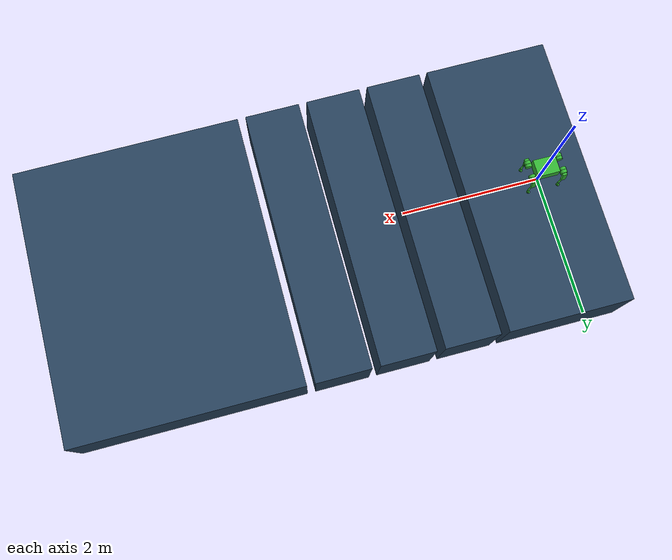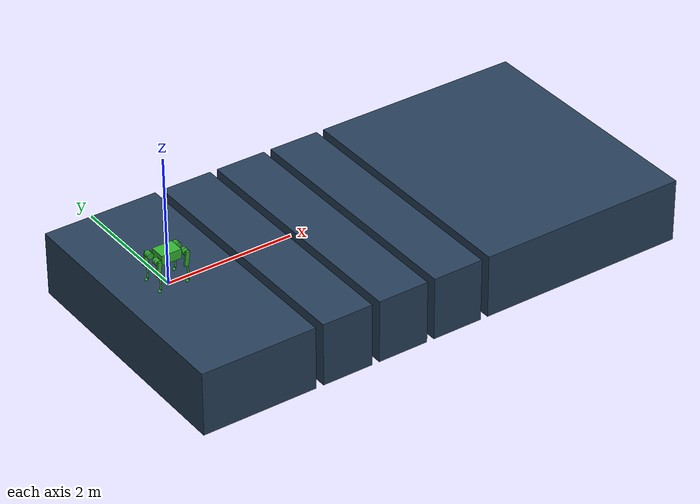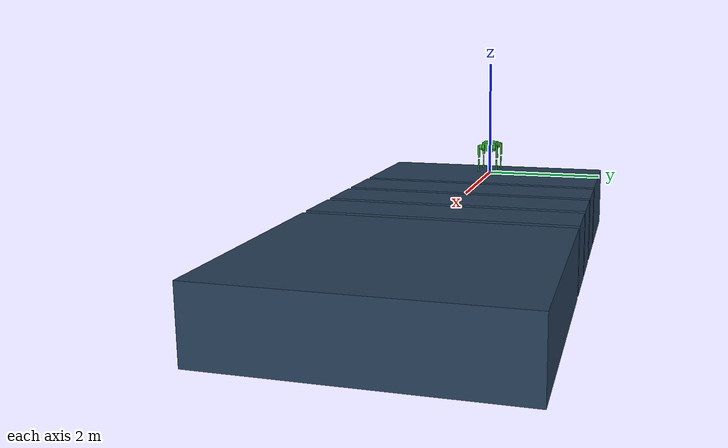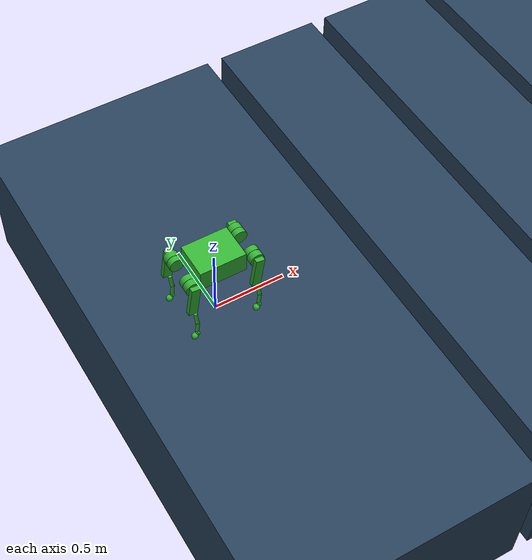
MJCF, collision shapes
<mujoco model="imgo2 cmoe gap scene">
  <include file="imgo2.xml"/>

  <!-- CMoETrackGapTerrainCfg medium difficulty: four 0.12 m gaps separated
       by 0.80 m platforms. Shift training spawn_x=0.75 m to robot x=0. -->
  <statistic center="2 0 0.5" extent="5"/>
  <visual>
    <headlight diffuse="0.6 0.6 0.6" ambient="0.3 0.3 0.3" specular="0 0 0"/>
    <rgba haze="0.15 0.25 0.35 1"/>
    <global azimuth="-130" elevation="-20"/>
  </visual>
  <asset>
    <texture type="skybox" builtin="gradient" rgb1="0.3 0.5 0.7" rgb2="0 0 0" width="512" height="3072"/>
    <texture type="2d" name="groundplane" builtin="checker" mark="edge" rgb1="0.2 0.3 0.4" rgb2="0.1 0.2 0.3"
      markrgb="0.8 0.8 0.8" width="300" height="300"/>
    <material name="groundplane" texture="groundplane" texuniform="true" texrepeat="5 5" reflectance="0.2"/>
  </asset>
  <worldbody>
    <light pos="0 0 3" dir="0 0 -1" directional="true"/>
    <!-- top z=0, width=4 m, 1 m deep; group 5 is the terrain ray mask -->
    <geom name="platform_0" type="box" pos="0.15 0 -0.5" size="0.90 2.0 0.5" group="5" material="groundplane" friction="1 0.005 0.0001" contype="1" conaffinity="2"/>
    <geom name="platform_1" type="box" pos="1.57 0 -0.5" size="0.40 2.0 0.5" group="5" material="groundplane" friction="1 0.005 0.0001" contype="1" conaffinity="2"/>
    <geom name="platform_2" type="box" pos="2.49 0 -0.5" size="0.40 2.0 0.5" group="5" material="groundplane" friction="1 0.005 0.0001" contype="1" conaffinity="2"/>
    <geom name="platform_3" type="box" pos="3.41 0 -0.5" size="0.40 2.0 0.5" group="5" material="groundplane" friction="1 0.005 0.0001" contype="1" conaffinity="2"/>
    <geom name="platform_4" type="box" pos="5.59 0 -0.5" size="1.66 2.0 0.5" group="5" material="groundplane" friction="1 0.005 0.0001" contype="1" conaffinity="2"/>
  </worldbody>
</mujoco>

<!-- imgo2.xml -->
<mujoco model="imgo2">
  <compiler angle="radian" eulerseq="xyz" autolimits="true" inertiafromgeom="false" />
  <option timestep="0.005" cone="elliptic" impratio="100" gravity="0 0 -9.81" />
  <asset>
      <mesh name="mesh_0" file="../meshes/base.STL" scale="1 1 1" />
      <mesh name="mesh_1" file="../meshes/FL_hip.STL" scale="1 1 1" />
      <mesh name="mesh_2" file="../meshes/L_thigh.STL" scale="1 1 1" />
      <mesh name="mesh_3" file="../meshes/L_shank.STL" scale="1 1 1" />
      <mesh name="mesh_4" file="../meshes/foot.STL" scale="1 1 1" />
      <mesh name="mesh_5" file="../meshes/FR_hip.STL" scale="1 1 1" />
      <mesh name="mesh_6" file="../meshes/R_thigh.STL" scale="1 1 1" />
      <mesh name="mesh_7" file="../meshes/R_shank.STL" scale="1 1 1" />
      <mesh name="mesh_8" file="../meshes/RL_hip.STL" scale="1 1 1" />
      <mesh name="mesh_9" file="../meshes/RR_hip.STL" scale="1 1 1" />
    </asset>
  <worldbody>
    <body name="base" pos="0 0 0.5">
          <freejoint name="root" />
          <site name="imu" size="0.005" />
          <!-- Engineering tow point; matches towing_env_cfg.ROBOT_ATTACHMENT_OFFSET_M. -->
          <site name="tow_robot" pos="-0.16 0 0" size="0.006" rgba="1 0.7 0 1" />
          <inertial pos="-0.00002223 -0.00136579 0.00287896" mass="5.53394020" fullinertia="0.03866860 0.10411461 0.12554111 0.00001502 0.00000229 -0.00009602" />
          <geom pos="0 0 0.0" euler="0 0 0" type="mesh" mesh="mesh_0" contype="0" conaffinity="0" group="2" rgba="0.55 0.6 0.65 1" />
          <geom pos="0 0 0" euler="0 0 0" type="box" size="0.1575 0.1215 0.0735" contype="2" conaffinity="1" condim="3" solref="0.005 1" friction="1 0.01 0.01" group="3" rgba="0.2 0.7 0.2 0.3" />
          <geom pos="0.136 0.07 -0.08325" euler="0 0 0" type="box" size="0.009 0.006 0.009" contype="2" conaffinity="1" condim="3" solref="0.005 1" friction="1 0.01 0.01" group="3" rgba="0.2 0.7 0.2 0.3" />
          <geom pos="0.136 -0.07 -0.08325" euler="0 0 0" type="box" size="0.009 0.006 0.009" contype="2" conaffinity="1" condim="3" solref="0.005 1" friction="1 0.01 0.01" group="3" rgba="0.2 0.7 0.2 0.3" />
          <geom pos="-0.136 0.07 -0.08325" euler="0 0 0" type="box" size="0.009 0.006 0.009" contype="2" conaffinity="1" condim="3" solref="0.005 1" friction="1 0.01 0.01" group="3" rgba="0.2 0.7 0.2 0.3" />
          <geom pos="-0.136 -0.07 -0.08325" euler="0 0 0" type="box" size="0.009 0.006 0.009" contype="2" conaffinity="1" condim="3" solref="0.005 1" friction="1 0.01 0.01" group="3" rgba="0.2 0.7 0.2 0.3" />
          <body name="FL_HIP" pos="0.1575 0.067 0.00025" euler="0 0 0">
            <joint name="FL_hip_joint" type="hinge" axis="1 0 0" range="-0.523 0.523" damping="1" armature="0.1" />
            <inertial pos="0.05776150 0.01631658 0.00001927" mass="0.66982842" fullinertia="0.00047165 0.00094023 0.00063679 -0.00002152 -0.00000604 0.00000025" />
            <geom type="mesh" mesh="mesh_1" contype="0" conaffinity="0" group="2" rgba="0.55 0.6 0.65 1" />
            <geom pos="0.063 0.013 0.0" euler="1.5707963267948966 0.0 0.0" type="cylinder" size="0.048 0.0205" contype="2" conaffinity="1" condim="3" solref="0.005 1" friction="1 0.01 0.01" group="3" rgba="0.2 0.7 0.2 0.3" />
            <body name="FL_THIGH" pos="0.063 0.0346 0" euler="0 0 0">
              <joint name="FL_thigh_joint" type="hinge" axis="0 1 0" range="-0.9 2.87" damping="1" armature="0.1" />
              <inertial pos="-0.00429543 0.04392351 -0.03236426" mass="0.96995719" fullinertia="0.00506421 0.00527087 0.00088197 0.00008162 -0.00034748 0.00062882" />
              <geom type="mesh" mesh="mesh_2" contype="0" conaffinity="0" group="2" rgba="0.55 0.6 0.65 1" />
              <geom pos="0.0 0.0235 0.0" euler="1.5707963267948966 0.0 0.0" type="cylinder" size="0.048 0.023" contype="2" conaffinity="1" condim="3" solref="0.005 1" friction="1 0.01 0.01" group="3" rgba="0.2 0.7 0.2 0.3" />
              <geom pos="-0.012 0.0637 -0.08" euler="0.0 0.137 0.0" type="box" size="0.03 0.016 0.11" contype="2" conaffinity="1" condim="3" solref="0.005 1" friction="1 0.01 0.01" group="3" rgba="0.2 0.7 0.2 0.3" />
              <body name="FL_SHANK" pos="0 0.0557 -0.22" euler="0 0 0">
                <joint name="FL_shank_joint" type="hinge" axis="0 1 0" range="-3.0 -0.733" damping="1" armature="0.1" />
                <inertial pos="0.00291507 0.00773582 -0.08768836" mass="0.09561741" fullinertia="0.00054414 0.00055144 0.00001064 0.00000025 0.00000058 0.00000263" />
                <geom type="mesh" mesh="mesh_3" contype="0" conaffinity="0" group="2" rgba="0.55 0.6 0.65 1" />
                <geom pos="0.0 0.008 -0.05" euler="0.0 -0.1 0.0" type="cylinder" size="0.012 0.05" contype="2" conaffinity="1" condim="3" solref="0.005 1" friction="1 0.01 0.01" group="3" rgba="0.2 0.7 0.2 0.3" />
                <geom pos="0.005 0.008 -0.14" euler="0.0 0.1 0.0" type="cylinder" size="0.012 0.04" contype="2" conaffinity="1" condim="3" solref="0.005 1" friction="1 0.01 0.01" group="3" rgba="0.2 0.7 0.2 0.3" />
                <body name="FL_FOOT" pos="0.0 0.00455 -0.206" euler="0.0 0.777 0.0">
                  <inertial pos="-0.00797137 0.00353495 -0.02130484" mass="0.056" fullinertia="9.6e-06 9.6e-06 9.6e-06 0 0 0" />
                  <geom type="mesh" mesh="mesh_4" contype="0" conaffinity="0" group="2" rgba="0.55 0.6 0.65 1" />
                  <geom pos="-0.008 0.0035 0.01" euler="0.0 0.0 0.0" type="cylinder" size="0.0155 0.005" contype="2" conaffinity="1" condim="3" solref="0.005 1" friction="0.4 0.02 0.01" group="3" rgba="0.2 0.7 0.2 0.3" />
                  <geom pos="-0.008 0.0035 -0.02" euler="0.0 0.0 0.0" type="sphere" size="0.022" contype="2" conaffinity="1" condim="3" solref="0.005 1" friction="0.4 0.02 0.01" group="3" rgba="0.2 0.7 0.2 0.3" />
                </body>
              </body>
            </body>
          </body>
          <body name="FR_HIP" pos="0.1575 -0.067 0.00025" euler="0 0 0">
            <joint name="FR_hip_joint" type="hinge" axis="1 0 0" range="-0.523 0.523" damping="1" armature="0.1" />
            <inertial pos="0.05776150 -0.01631658 0.00001927" mass="0.66982842" fullinertia="0.00047165 0.00094023 0.00063679 0.00002152 -0.00000604 -0.00000025" />
            <geom type="mesh" mesh="mesh_5" contype="0" conaffinity="0" group="2" rgba="0.55 0.6 0.65 1" />
            <geom pos="0.063 -0.013 0.0" euler="1.5707963267948966 0.0 0.0" type="cylinder" size="0.048 0.0205" contype="2" conaffinity="1" condim="3" solref="0.005 1" friction="1 0.01 0.01" group="3" rgba="0.2 0.7 0.2 0.3" />
            <body name="FR_THIGH" pos="0.063 -0.0346 0" euler="0 0 0">
              <joint name="FR_thigh_joint" type="hinge" axis="0 1 0" range="-0.9 2.87" damping="1" armature="0.1" />
              <inertial pos="-0.00429543 -0.04392351 -0.03236426" mass="0.96995719" fullinertia="0.00506421 0.00527087 0.00088197 -0.00008162 -0.00034748 -0.00062882" />
              <geom type="mesh" mesh="mesh_6" contype="0" conaffinity="0" group="2" rgba="0.55 0.6 0.65 1" />
              <geom pos="0.0 -0.0235 0.0" euler="1.5707963267948966 0.0 0.0" type="cylinder" size="0.048 0.023" contype="2" conaffinity="1" condim="3" solref="0.005 1" friction="1 0.01 0.01" group="3" rgba="0.2 0.7 0.2 0.3" />
              <geom pos="-0.012 -0.0637 -0.08" euler="0.0 0.137 0.0" type="box" size="0.03 0.016 0.11" contype="2" conaffinity="1" condim="3" solref="0.005 1" friction="1 0.01 0.01" group="3" rgba="0.2 0.7 0.2 0.3" />
              <body name="FR_SHANK" pos="0 -0.0557 -0.22" euler="0 0 0">
                <joint name="FR_shank_joint" type="hinge" axis="0 1 0" range="-3.0 -0.733" damping="1" armature="0.1" />
                <inertial pos="0.00291507 -0.00773582 -0.08768836" mass="0.09561741" fullinertia="0.00054414 0.00055144 0.00001064 -0.00000025 0.00000058 -0.00000263" />
                <geom type="mesh" mesh="mesh_7" contype="0" conaffinity="0" group="2" rgba="0.55 0.6 0.65 1" />
                <geom pos="0.0 -0.008 -0.05" euler="0.0 -0.1 0.0" type="cylinder" size="0.012 0.05" contype="2" conaffinity="1" condim="3" solref="0.005 1" friction="1 0.01 0.01" group="3" rgba="0.2 0.7 0.2 0.3" />
                <geom pos="0.005 -0.008 -0.14" euler="0.0 0.1 0.0" type="cylinder" size="0.012 0.04" contype="2" conaffinity="1" condim="3" solref="0.005 1" friction="1 0.01 0.01" group="3" rgba="0.2 0.7 0.2 0.3" />
                <body name="FR_FOOT" pos="0.0 -0.01145 -0.206" euler="0.0 0.777 0.0">
                  <inertial pos="-0.00797137 0.00353495 -0.02130484" mass="0.056" fullinertia="9.6e-06 9.6e-06 9.6e-06 0 0 0" />
                  <geom type="mesh" mesh="mesh_4" contype="0" conaffinity="0" group="2" rgba="0.55 0.6 0.65 1" />
                  <geom pos="-0.008 -0.0035 0.01" euler="0.0 0.0 0.0" type="cylinder" size="0.0155 0.005" contype="2" conaffinity="1" condim="3" solref="0.005 1" friction="0.4 0.02 0.01" group="3" rgba="0.2 0.7 0.2 0.3" />
                  <geom pos="-0.008 -0.0035 -0.02" euler="0.0 0.0 0.0" type="sphere" size="0.022" contype="2" conaffinity="1" condim="3" solref="0.005 1" friction="0.4 0.02 0.01" group="3" rgba="0.2 0.7 0.2 0.3" />
                </body>
              </body>
            </body>
          </body>
          <body name="RL_HIP" pos="-0.1575 0.067 0.00025" euler="0 0 0">
            <joint name="RL_hip_joint" type="hinge" axis="1 0 0" range="-0.523 0.523" damping="1" armature="0.1" />
            <inertial pos="-0.05776150 0.01631658 0.00001927" mass="0.66982842" fullinertia="0.00047165 0.00094023 0.00063679 0.00002152 0.00000604 0.00000025" />
            <geom type="mesh" mesh="mesh_8" contype="0" conaffinity="0" group="2" rgba="0.55 0.6 0.65 1" />
            <geom pos="-0.063 0.013 0.0" euler="1.5707963267948966 0.0 0.0" type="cylinder" size="0.048 0.0205" contype="2" conaffinity="1" condim="3" solref="0.005 1" friction="1 0.01 0.01" group="3" rgba="0.2 0.7 0.2 0.3" />
            <body name="RL_THIGH" pos="-0.063 0.0346 0" euler="0 0 0">
              <joint name="RL_thigh_joint" type="hinge" axis="0 1 0" range="-0.9 2.87" damping="1" armature="0.1" />
              <inertial pos="0.00429543 0.04392351 -0.03236426" mass="0.96995719" fullinertia="0.00506421 0.00527087 0.00088197 0.00008162 -0.00034748 0.00062882" />
              <geom type="mesh" mesh="mesh_2" contype="0" conaffinity="0" group="2" rgba="0.55 0.6 0.65 1" />
              <geom pos="0.0 0.0235 0.0" euler="1.5707963267948966 0.0 0.0" type="cylinder" size="0.048 0.023" contype="2" conaffinity="1" condim="3" solref="0.005 1" friction="1 0.01 0.01" group="3" rgba="0.2 0.7 0.2 0.3" />
              <geom pos="-0.012 0.0637 -0.08" euler="0.0 0.137 0.0" type="box" size="0.03 0.016 0.11" contype="2" conaffinity="1" condim="3" solref="0.005 1" friction="1 0.01 0.01" group="3" rgba="0.2 0.7 0.2 0.3" />
              <body name="RL_SHANK" pos="0 0.0557 -0.22" euler="0 0 0">
                <joint name="RL_shank_joint" type="hinge" axis="0 1 0" range="-3.0 -0.733" damping="1" armature="0.1" />
                <inertial pos="0.00291507 0.00773582 -0.08768836" mass="0.09561741" fullinertia="0.00054414 0.00055144 0.00001064 0.00000025 0.00000058 0.00000263" />
                <geom type="mesh" mesh="mesh_3" contype="0" conaffinity="0" group="2" rgba="0.55 0.6 0.65 1" />
                <geom pos="0.0 0.008 -0.05" euler="0.0 -0.1 0.0" type="cylinder" size="0.012 0.05" contype="2" conaffinity="1" condim="3" solref="0.005 1" friction="1 0.01 0.01" group="3" rgba="0.2 0.7 0.2 0.3" />
                <geom pos="0.005 0.008 -0.14" euler="0.0 0.1 0.0" type="cylinder" size="0.012 0.04" contype="2" conaffinity="1" condim="3" solref="0.005 1" friction="1 0.01 0.01" group="3" rgba="0.2 0.7 0.2 0.3" />
                <body name="RL_FOOT" pos="0.0 0.00455 -0.206" euler="0.0 0.777 0.0">
                  <inertial pos="-0.00797137 0.00353495 -0.02130484" mass="0.056" fullinertia="9.6e-06 9.6e-06 9.6e-06 0 0 0" />
                  <geom type="mesh" mesh="mesh_4" contype="0" conaffinity="0" group="2" rgba="0.55 0.6 0.65 1" />
                  <geom pos="-0.008 0.0035 0.01" euler="0.0 0.0 0.0" type="cylinder" size="0.0155 0.005" contype="2" conaffinity="1" condim="3" solref="0.005 1" friction="0.4 0.02 0.01" group="3" rgba="0.2 0.7 0.2 0.3" />
                  <geom pos="-0.008 0.0035 -0.02" euler="0.0 0.0 0.0" type="sphere" size="0.022" contype="2" conaffinity="1" condim="3" solref="0.005 1" friction="0.4 0.02 0.01" group="3" rgba="0.2 0.7 0.2 0.3" />
                </body>
              </body>
            </body>
          </body>
          <body name="RR_HIP" pos="-0.1575 -0.067 0.00025" euler="0 0 0">
            <joint name="RR_hip_joint" type="hinge" axis="1 0 0" range="-0.523 0.523" damping="1" armature="0.1" />
            <inertial pos="-0.05776150 -0.01631658 0.00001927" mass="0.66982842" fullinertia="0.00047165 0.00094023 0.00063679 -0.00002152 0.00000604 -0.00000025" />
            <geom type="mesh" mesh="mesh_9" contype="0" conaffinity="0" group="2" rgba="0.55 0.6 0.65 1" />
            <geom pos="-0.063 -0.013 0.0" euler="1.5707963267948966 0.0 0.0" type="cylinder" size="0.048 0.0205" contype="2" conaffinity="1" condim="3" solref="0.005 1" friction="1 0.01 0.01" group="3" rgba="0.2 0.7 0.2 0.3" />
            <body name="RR_THIGH" pos="-0.063 -0.0346 0" euler="0 0 0">
              <joint name="RR_thigh_joint" type="hinge" axis="0 1 0" range="-0.9 2.87" damping="1" armature="0.1" />
              <inertial pos="0.00429543 -0.04392351 -0.03236426" mass="0.96995719" fullinertia="0.00506421 0.00527087 0.00088197 -0.00008162 -0.00034748 -0.00062882" />
              <geom type="mesh" mesh="mesh_6" contype="0" conaffinity="0" group="2" rgba="0.55 0.6 0.65 1" />
              <geom pos="0.0 -0.0235 0.0" euler="1.5707963267948966 0.0 0.0" type="cylinder" size="0.048 0.023" contype="2" conaffinity="1" condim="3" solref="0.005 1" friction="1 0.01 0.01" group="3" rgba="0.2 0.7 0.2 0.3" />
              <geom pos="-0.012 -0.0637 -0.08" euler="0.0 0.137 0.0" type="box" size="0.03 0.016 0.11" contype="2" conaffinity="1" condim="3" solref="0.005 1" friction="1 0.01 0.01" group="3" rgba="0.2 0.7 0.2 0.3" />
              <body name="RR_SHANK" pos="0 -0.0557 -0.22" euler="0 0 0">
                <joint name="RR_shank_joint" type="hinge" axis="0 1 0" range="-3.0 -0.733" damping="1" armature="0.1" />
                <inertial pos="0.00291507 -0.00773582 -0.08768836" mass="0.09561741" fullinertia="0.00054414 0.00055144 0.00001064 -0.00000025 0.00000058 -0.00000263" />
                <geom type="mesh" mesh="mesh_7" contype="0" conaffinity="0" group="2" rgba="0.55 0.6 0.65 1" />
                <geom pos="0.0 -0.008 -0.05" euler="0.0 -0.1 0.0" type="cylinder" size="0.012 0.05" contype="2" conaffinity="1" condim="3" solref="0.005 1" friction="1 0.01 0.01" group="3" rgba="0.2 0.7 0.2 0.3" />
                <geom pos="0.005 -0.008 -0.14" euler="0.0 0.1 0.0" type="cylinder" size="0.012 0.04" contype="2" conaffinity="1" condim="3" solref="0.005 1" friction="1 0.01 0.01" group="3" rgba="0.2 0.7 0.2 0.3" />
                <body name="RR_FOOT" pos="0.0 -0.01145 -0.206" euler="0.0 0.777 0.0">
                  <inertial pos="-0.00797137 0.00353495 -0.02130484" mass="0.056" fullinertia="9.6e-06 9.6e-06 9.6e-06 0 0 0" />
                  <geom type="mesh" mesh="mesh_4" contype="0" conaffinity="0" group="2" rgba="0.55 0.6 0.65 1" />
                  <geom pos="-0.008 -0.0035 0.01" euler="0.0 0.0 0.0" type="cylinder" size="0.0155 0.005" contype="2" conaffinity="1" condim="3" solref="0.005 1" friction="0.4 0.02 0.01" group="3" rgba="0.2 0.7 0.2 0.3" />
                  <geom pos="-0.008 -0.0035 -0.02" euler="0.0 0.0 0.0" type="sphere" size="0.022" contype="2" conaffinity="1" condim="3" solref="0.005 1" friction="0.4 0.02 0.01" group="3" rgba="0.2 0.7 0.2 0.3" />
                </body>
              </body>
            </body>
          </body>
        </body>
  </worldbody>
  <actuator>
      <motor name="FL_hip_joint_motor" joint="FL_hip_joint" ctrlrange="-23.7 23.7" gear="1" />
      <motor name="FL_thigh_joint_motor" joint="FL_thigh_joint" ctrlrange="-23.7 23.7" gear="1" />
      <motor name="FL_shank_joint_motor" joint="FL_shank_joint" ctrlrange="-23.7 23.7" gear="1" />
      <motor name="FR_hip_joint_motor" joint="FR_hip_joint" ctrlrange="-23.7 23.7" gear="1" />
      <motor name="FR_thigh_joint_motor" joint="FR_thigh_joint" ctrlrange="-23.7 23.7" gear="1" />
      <motor name="FR_shank_joint_motor" joint="FR_shank_joint" ctrlrange="-23.7 23.7" gear="1" />
      <motor name="RL_hip_joint_motor" joint="RL_hip_joint" ctrlrange="-23.7 23.7" gear="1" />
      <motor name="RL_thigh_joint_motor" joint="RL_thigh_joint" ctrlrange="-23.7 23.7" gear="1" />
      <motor name="RL_shank_joint_motor" joint="RL_shank_joint" ctrlrange="-23.7 23.7" gear="1" />
      <motor name="RR_hip_joint_motor" joint="RR_hip_joint" ctrlrange="-23.7 23.7" gear="1" />
      <motor name="RR_thigh_joint_motor" joint="RR_thigh_joint" ctrlrange="-23.7 23.7" gear="1" />
      <motor name="RR_shank_joint_motor" joint="RR_shank_joint" ctrlrange="-23.7 23.7" gear="1" />
    </actuator>
  <sensor>
      <jointpos name="FL_hip_joint_jointpos" joint="FL_hip_joint" />
      <jointpos name="FL_thigh_joint_jointpos" joint="FL_thigh_joint" />
      <jointpos name="FL_shank_joint_jointpos" joint="FL_shank_joint" />
      <jointpos name="FR_hip_joint_jointpos" joint="FR_hip_joint" />
      <jointpos name="FR_thigh_joint_jointpos" joint="FR_thigh_joint" />
      <jointpos name="FR_shank_joint_jointpos" joint="FR_shank_joint" />
      <jointpos name="RL_hip_joint_jointpos" joint="RL_hip_joint" />
      <jointpos name="RL_thigh_joint_jointpos" joint="RL_thigh_joint" />
      <jointpos name="RL_shank_joint_jointpos" joint="RL_shank_joint" />
      <jointpos name="RR_hip_joint_jointpos" joint="RR_hip_joint" />
      <jointpos name="RR_thigh_joint_jointpos" joint="RR_thigh_joint" />
      <jointpos name="RR_shank_joint_jointpos" joint="RR_shank_joint" />
      <jointvel name="FL_hip_joint_jointvel" joint="FL_hip_joint" />
      <jointvel name="FL_thigh_joint_jointvel" joint="FL_thigh_joint" />
      <jointvel name="FL_shank_joint_jointvel" joint="FL_shank_joint" />
      <jointvel name="FR_hip_joint_jointvel" joint="FR_hip_joint" />
      <jointvel name="FR_thigh_joint_jointvel" joint="FR_thigh_joint" />
      <jointvel name="FR_shank_joint_jointvel" joint="FR_shank_joint" />
      <jointvel name="RL_hip_joint_jointvel" joint="RL_hip_joint" />
      <jointvel name="RL_thigh_joint_jointvel" joint="RL_thigh_joint" />
      <jointvel name="RL_shank_joint_jointvel" joint="RL_shank_joint" />
      <jointvel name="RR_hip_joint_jointvel" joint="RR_hip_joint" />
      <jointvel name="RR_thigh_joint_jointvel" joint="RR_thigh_joint" />
      <jointvel name="RR_shank_joint_jointvel" joint="RR_shank_joint" />
      <jointactuatorfrc name="FL_hip_joint_jointactuatorfrc" joint="FL_hip_joint" />
      <jointactuatorfrc name="FL_thigh_joint_jointactuatorfrc" joint="FL_thigh_joint" />
      <jointactuatorfrc name="FL_shank_joint_jointactuatorfrc" joint="FL_shank_joint" />
      <jointactuatorfrc name="FR_hip_joint_jointactuatorfrc" joint="FR_hip_joint" />
      <jointactuatorfrc name="FR_thigh_joint_jointactuatorfrc" joint="FR_thigh_joint" />
      <jointactuatorfrc name="FR_shank_joint_jointactuatorfrc" joint="FR_shank_joint" />
      <jointactuatorfrc name="RL_hip_joint_jointactuatorfrc" joint="RL_hip_joint" />
      <jointactuatorfrc name="RL_thigh_joint_jointactuatorfrc" joint="RL_thigh_joint" />
      <jointactuatorfrc name="RL_shank_joint_jointactuatorfrc" joint="RL_shank_joint" />
      <jointactuatorfrc name="RR_hip_joint_jointactuatorfrc" joint="RR_hip_joint" />
      <jointactuatorfrc name="RR_thigh_joint_jointactuatorfrc" joint="RR_thigh_joint" />
      <jointactuatorfrc name="RR_shank_joint_jointactuatorfrc" joint="RR_shank_joint" />
      <!-- 必须挂在 site 上，不能挂 body：body 的 framequat/framelinvel 会再乘上该 body
           的惯量主轴旋转（base 的 iquat ≈ 180° 绕 (1,0,1)/√2），使姿态观测量整体偏转
           90°，策略会把直立误判为"已翻倒"。参考项目同样用 site（base_site）。 -->
      <framequat name="orientation" objtype="site" objname="imu" />
      <gyro name="angular_velocity" site="imu" />
      <!-- 追加在末尾：不影响上面 0..42 的偏移。注意 site 的 framelinvel 是世界系速度，
           训练侧 base_lin_vel 是体系速度；C++ 目前不读它，要用时（README AMP-06）
           在 GetState/RunModel 里读并做 QuatRotateInverse(base_quat, v) 变换。 -->
    <framelinvel name="base_lin_vel" objtype="site" objname="imu" />
  </sensor>
</mujoco>
